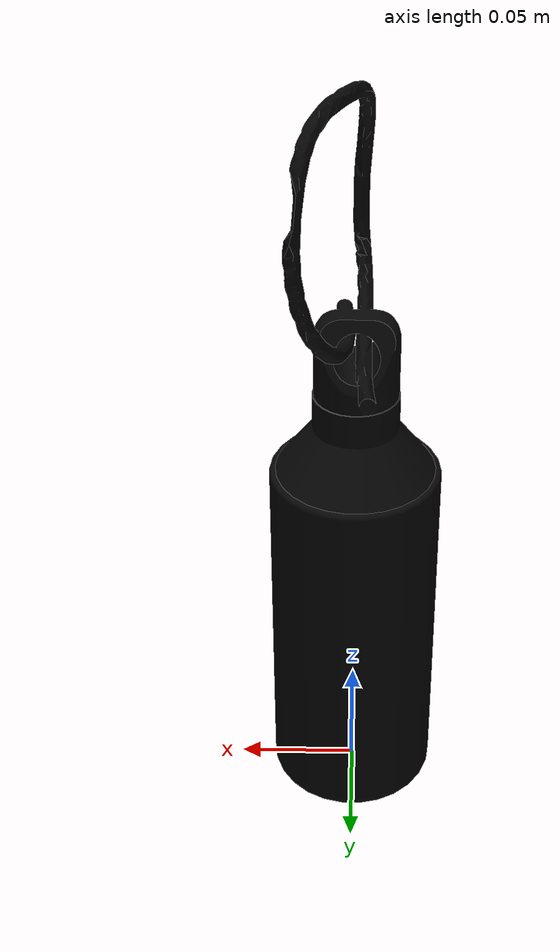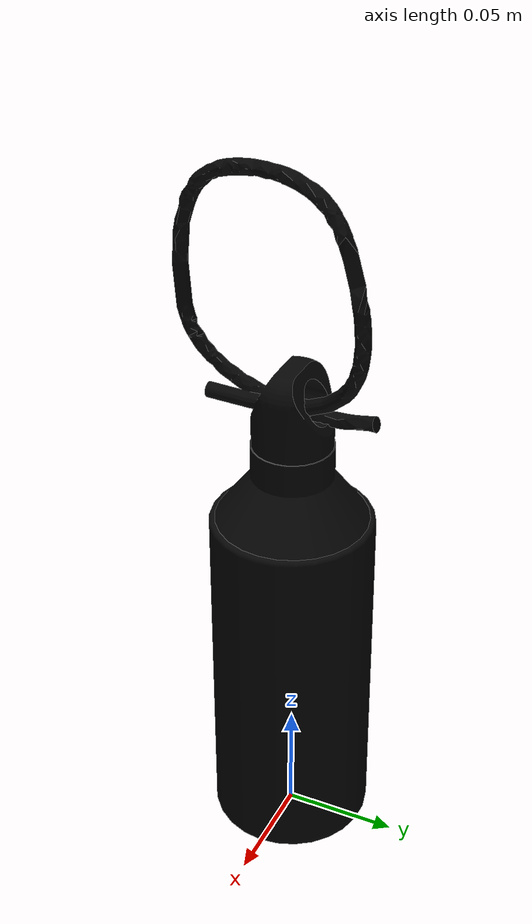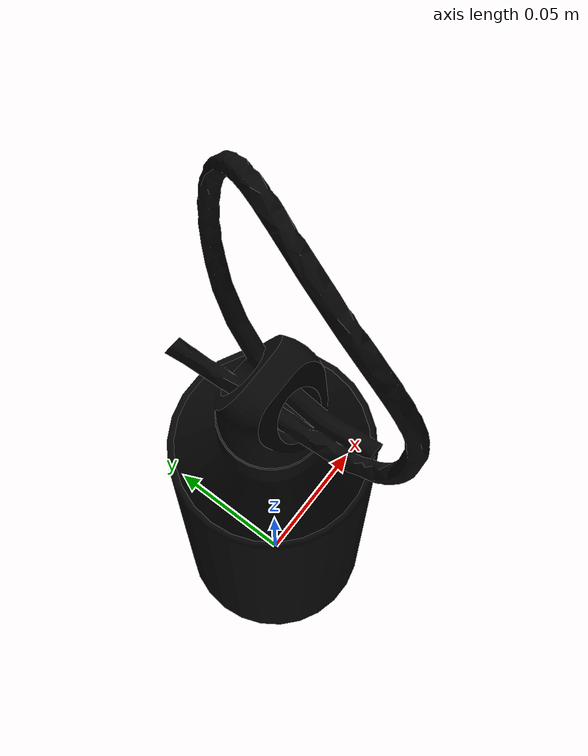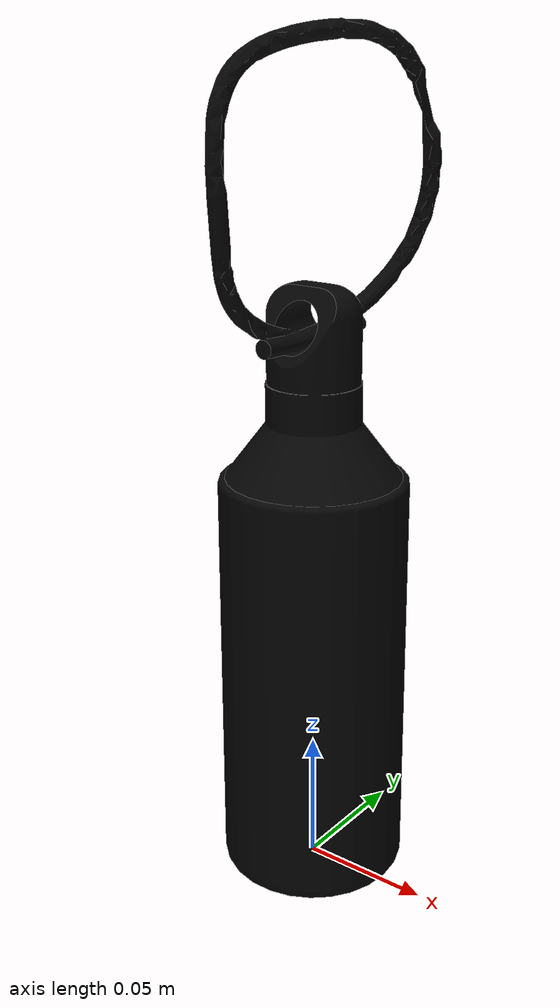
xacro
<?xml version="1.0"?>
<robot name="bottle" xmlns:xacro="http://www.ros.org/wiki/xacro" >
  <xacro:arg name="debug" default="0"/>
  <xacro:arg name="namespace" default="bottle"/>
  <!-- Include the UUV macro file -->
  <xacro:include filename="$(find grmi_worlds)/urdf/bottle.xacro"/>
  <!-- Create the bottle -->
  <xacro:bottle namespace="$(arg namespace)" debug="$(arg debug)"/>

</robot>

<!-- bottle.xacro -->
<robot xmlns:xacro="http://www.ros.org/wiki/xacro">
    <!-- Import macro files -->
    <xacro:include filename="$(find uuv_descriptions)/urdf/common.urdf.xacro" />

    <!-- Properties -->
    <xacro:property name="mass" value="1.0"/> <!--The real value is 8.6, but it was changed for the simulation. The real life add 1kg to the robot.-->
    <xacro:property name="volume" value="0.00075"/>
    <xacro:property name="cob" value="0 0 0"/>
    <xacro:property name="rho" value="1027.0"/>

    <xacro:property name="visual_mesh_file" value="file://$(find grmi_worlds)/world_models/Bottle/meshes/bottle.dae"/>
    <xacro:property name="collision_mesh_file" value="file://$(find grmi_worlds)/world_models/Bottle/meshes/bottle.dae"/>

    <xacro:macro name="bottle" params="namespace debug">
        <link name="${namespace}/base_link">
            <visual>
                <origin xyz="0 0 0" rpy="0 0 0"/>
                <geometry>
                    <mesh filename="${visual_mesh_file}" scale="1 1 1" />
                </geometry>
            </visual>

            <collision>
                <origin xyz="0 0 0" rpy="0 0 0"/>
                    <geometry>
                        <mesh filename="${collision_mesh_file}" scale="1 1 1" />
                    </geometry>
            </collision>

            <inertial>
              <mass value="${mass}" />
              <origin xyz="0 0 0" rpy="0 0 0"/>
              <inertia ixx="0.01" ixy="0" ixz="0"
                       iyy="0.01" iyz="0"
                       izz="0.1" />
            </inertial>
        </link>

  <!-- Set up hydrodynamic plugin-->
      <gazebo>
        <plugin name="${namespace}_bottle_uuv_plugin" filename="libuuv_underwater_object_ros_plugin.so">
          <fluid_density>${rho}</fluid_density>
          <flow_velocity_topic>hydrodynamics/current_velocity</flow_velocity_topic>
          <debug>${debug}</debug>
          <link name="${namespace}/base_link">
            <volume>${volume}</volume>
            <center_of_buoyancy>${cob}</center_of_buoyancy>
            <neutrally_buoyant>0</neutrally_buoyant>
            <hydrodynamic_model>
              <type>fossen</type>
              <added_mass>
                ${mass} 0       0       0       0       0
                0       ${mass} 0       0       0       0
                0       0       ${mass} 0       0       0
                0       0       0       0.01    0       0
                0       0       0       0       0.01    0
                0       0       0       0       0       0.1
              </added_mass>
              <linear_damping>
                -0 -0 -0 -0.1 -0.1 -0.1
              </linear_damping>

              <quadratic_damping>
                -2 -2 -2 -2 -2 -2
              </quadratic_damping>
            </hydrodynamic_model>
          </link>
        </plugin>
      </gazebo>

    </xacro:macro>
</robot>
